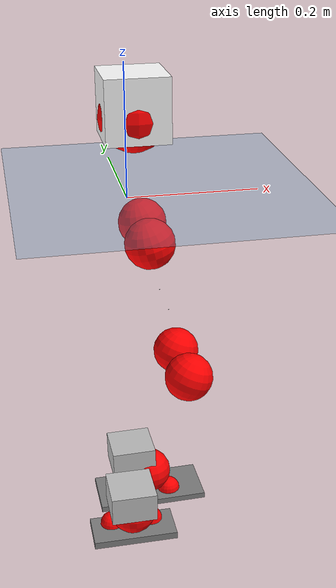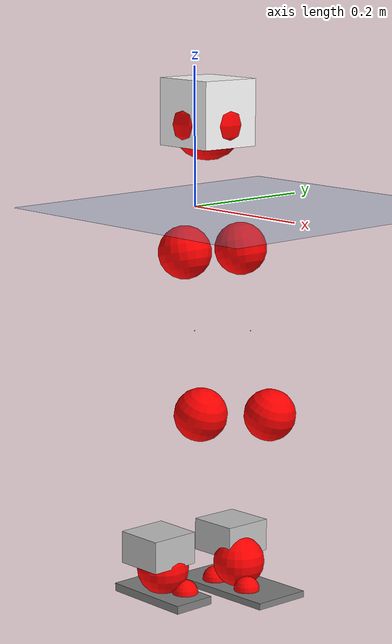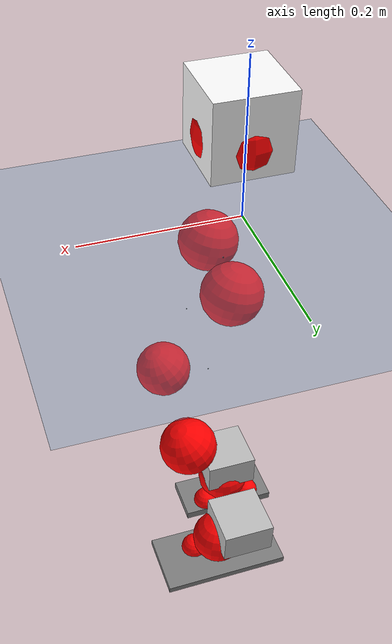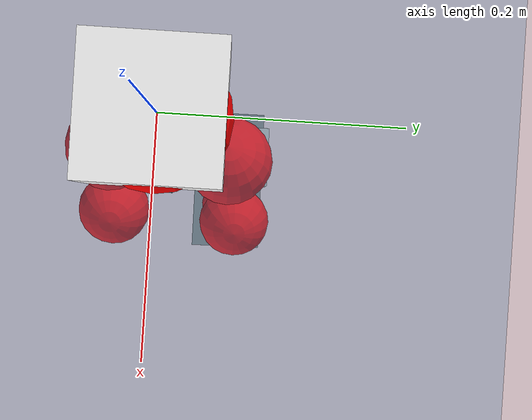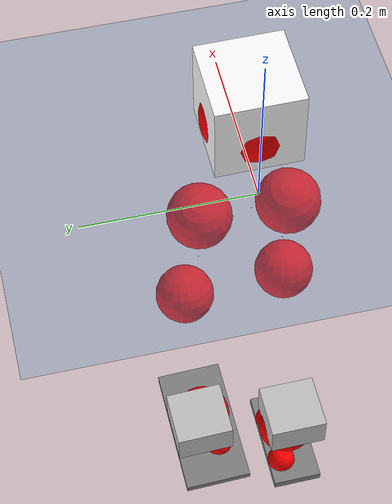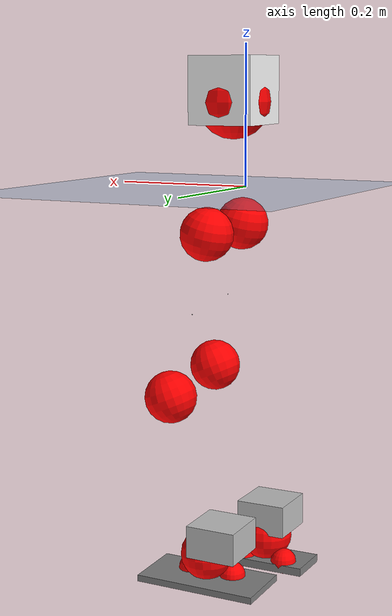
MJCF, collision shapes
<mujoco model="pi_12dof_release_v1">
  <compiler angle="radian" assetdir="assets" balanceinertia="true" inertiafromgeom="false"/>

  <option timestep="0.005" density="1.2" viscosity="2e-05"/>

  <size nkey="1"/>

  <visual>
    <quality shadowsize="8192"/>
    <map shadowclip="0.5"/>
  </visual>

  <default>
    <default class="/">
      <joint armature="0.01" damping="0.01" frictionloss="0.01"/>
      <geom contype="0" conaffinity="0" group="1" solref="-1000 -80"/>
      <site size="0.01 0.005 0.005" group="5"/>
      <general forcelimited="true" biastype="affine" gainprm="20" biasprm="0 -20 -0.5"/>
      <default class="foot">
        <geom size="0.0845 0.036 0.005" type="box" condim="6" group="4" priority="1" friction="0.9 0.2 0.2" solimp="0.015 1 0.005"/>
      </default>
      <default class="reward_collision_sphere">
        <geom group="5" rgba="1 0 0 1"/>
      </default>
    </default>
  </default>

  <asset>
    <texture type="skybox" colorspace="auto" name="//unnamed_texture_0" builtin="gradient" rgb1="0.95 0.95 0.95" rgb2="0.95 0.95 0.95" width="100" height="600"/>
    <texture type="2d" colorspace="auto" name="texplane" builtin="checker" rgb1="0.345 0.575 0.748" rgb2="0.345 0.575 0.748" markrgb="1 1 1" width="512" height="512"/>
    <material name="MatPlane" class="/" texture="texplane" texuniform="true" texrepeat="2 2" specular="0.9"/>
    <mesh name="baselink_1" class="/" file="baselink_1.STL"/>
    <mesh name="r_hip_pitch_link" class="/" file="r_hip_pitch_link.STL"/>
    <mesh name="r_hip_roll_link" class="/" file="r_hip_roll_link.STL"/>
    <mesh name="r_thigh_link" class="/" file="r_thigh_link.STL"/>
    <mesh name="r_calf_link" class="/" file="r_calf_link.STL"/>
    <mesh name="r_ankle_pitch_link" class="/" file="r_ankle_pitch_link.STL"/>
    <mesh name="r_ankle_roll_link" class="/" file="r_ankle_roll_link.STL"/>
    <mesh name="l_hip_pitch_link" class="/" file="l_hip_pitch_link.STL"/>
    <mesh name="l_hip_roll_link" class="/" file="l_hip_roll_link.STL"/>
    <mesh name="l_thigh_link" class="/" file="l_thigh_link.STL"/>
    <mesh name="l_calf_link" class="/" file="l_calf_link.STL"/>
    <mesh name="l_ankle_pitch_link" class="/" file="l_ankle_pitch_link.STL"/>
    <mesh name="l_ankle_roll_link" class="/" file="l_ankle_roll_link.STL"/>
  </asset>

  <worldbody>
    <geom name="floor" class="/" size="100 100 0.125" type="plane" group="0" material="MatPlane"/>
    <light name="toplight_shadow" class="/" pos="0 0 5" dir="0.0990148 0.0990148 -0.990148" type="directional" ambient="0.04 0.04 0.04" diffuse="0.55 0.55 0.55" specular="0.12 0.12 0.12"/>
    <light name="toplight_fill" class="/" pos="0 0 5" dir="0.0990148 0.0990148 -0.990148" type="directional" castshadow="false" ambient="0.04 0.04 0.04" diffuse="0.3 0.3 0.3" specular="0.08 0.08 0.08"/>
    <body name="trunk" pos="0.013903 0.0097096 0.00580116" quat="0.999984 -0.00559515 8.62997e-05 0.000661248">
      <inertial pos="0.015802 0.000907669 0.065973" quat="0.697166 -0.0104028 -0.0105559 0.716757" mass="1.75175" diaginertia="0.000312147 0.00193707 0.039474"/>
      <joint name="//unnamed_joint_0" type="free"/>
      <geom name="//unnamed_geom_1" class="/" type="mesh" density="0" rgba="1 1 1 1" mesh="baselink_1"/>
      <geom name="//unnamed_geom_2" class="/" size="0.0476529 0.0476529 0.0476529" pos="0 0 0.129887" type="box" rgba="1 1 1 1"/>
      <geom name="//unnamed_geom_3" class="reward_collision_sphere" size="0.0524182" pos="0 0 0.113651"/>
      <site name="imu" class="/" pos="-7.90976e-05 -0.0271857 0.0210505" size="0.00953058"/>
      <camera name="track" class="/" pos="0 -1.47646 0" quat="0.707107 0.707107 0 0" mode="trackcom"/>
      <camera name="ego_camera" class="/" pos="0.0373016 0 0.292246" quat="-0.5 -0.5 0.5 0.5"/>
      <body name="r_hip_pitch_link" pos="0.0085193 -0.00832441 -0.0594452" quat="0.99272 -0.00419421 -0.12032 -0.00340118">
        <inertial pos="0.0152851 -0.0333364 0.00721415" quat="-0.0184784 0.705596 -0.0313177 0.707681" mass="0.278137" diaginertia="2.88476e-06 2.12277e-05 0.000716785"/>
        <joint name="r_hip_pitch_joint" class="/" pos="0 0 0" axis="-0.0385122 -0.998826 -0.0293983" stiffness="0.0684233" range="-1.76047 1.15329" armature="0.00996939" damping="0.0253127" frictionloss="0.00481604"/>
        <geom name="//unnamed_geom_4" class="/" type="mesh" density="0" rgba="0.75294 0.75294 0.75294 1" mesh="r_hip_pitch_link"/>
        <geom name="//unnamed_geom_5" class="/" size="0.000476529 0.000476529 0.000476529" type="box" rgba="0.75294 0.75294 0.75294 1"/>
        <body name="r_hip_roll_link" pos="0.0025187 -0.0442395 -0.0055991" quat="1 2.64877e-05 -0.000159347 0.000205923">
          <inertial pos="-0.0147353 -0.00115969 -0.111395" quat="0.707449 -0.0754714 -0.0844783 0.697627" mass="0.356439" diaginertia="1.04469e-05 5.84415e-05 0.00156873"/>
          <joint name="r_hip_roll_joint" class="/" pos="0 0 0" axis="-0.999999 -0.00107946 1.3935e-05" range="0.109818 0.348685" armature="0.0162245" damping="0.0536378" frictionloss="0.00945699"/>
          <geom name="//unnamed_geom_6" class="/" type="mesh" density="0" rgba="0.75294 0.75294 0.75294 1" mesh="r_hip_roll_link"/>
          <geom name="//unnamed_geom_7" class="/" size="0.000476529 0.000476529 0.000476529" type="box" rgba="0.75294 0.75294 0.75294 1"/>
          <geom name="//unnamed_geom_8" class="reward_collision_sphere" size="0.0381223"/>
          <body name="r_thigh_link" pos="-0.00025285 -0.00327752 -0.11124" quat="0.99999 0.00422269 -0.0014428 0.000818803">
            <inertial pos="-0.00828398 -0.00663423 -0.0668439" quat="0.763966 0.643621 0.0405387 0.0215396" mass="0.0925619" diaginertia="4.05001e-06 1.89243e-05 0.000731074"/>
            <joint name="r_thigh_joint" class="/" pos="0 0 0" axis="0.0379909 -0.0393323 -0.998504" stiffness="0.0687864" range="-0.317408 0.413635" armature="0.0157236" damping="0" frictionloss="0.00986557"/>
            <geom name="//unnamed_geom_9" class="/" type="mesh" density="0" rgba="0.75294 0.75294 0.75294 1" mesh="r_thigh_link"/>
            <geom name="//unnamed_geom_10" class="/" size="0.000476529 0.000476529 0.000476529" type="box" rgba="0.75294 0.75294 0.75294 1"/>
            <body name="r_calf_link" pos="0.000443362 -0.0138119 -0.117631" quat="0.946875 0.000927033 0.321593 -0.00217633">
              <inertial pos="-0.0110899 -0.00502091 -0.114472" quat="0.99998 -0.00133371 0.000252307 0.00614906" mass="0.496019" diaginertia="9.70674e-05 0.000703385 0.00192326"/>
              <joint name="r_calf_joint" class="/" pos="0 0 0" axis="-0.00419421 -0.999989 -0.00227721" range="-1.63334 0.891916" armature="0.00163601" damping="0.061" frictionloss="0.00245206"/>
              <geom name="//unnamed_geom_11" class="/" type="mesh" density="0" rgba="0.75294 0.75294 0.75294 1" mesh="r_calf_link"/>
              <geom name="//unnamed_geom_12" class="/" size="0.000476529 0.000476529 0.000476529" type="box" rgba="0.75294 0.75294 0.75294 1"/>
              <geom name="//unnamed_geom_13" class="reward_collision_sphere" size="0.0381223"/>
              <body name="r_ankle_pitch_link" pos="-0.000481311 0.00448787 -0.239777" quat="0.978975 0.000326024 -0.20394 0.0040759">
                <inertial pos="0.0123266 0.0171833 0.00437151" quat="-0.000875909 0.713089 -0.00785854 0.701029" mass="0.193025" diaginertia="1.00879e-05 5.60741e-05 0.00164469"/>
                <joint name="r_ankle_pitch_joint" class="/" pos="0 0 0" axis="0.0717621 -0.997334 -0.0132512" stiffness="0.0676" range="-1.07335 0.28738" armature="0.010399" damping="0.0144564" frictionloss="0.0140368"/>
                <geom name="//unnamed_geom_14" class="/" type="mesh" density="0" rgba="0.75294 0.75294 0.75294 1" mesh="r_ankle_pitch_link"/>
                <geom name="//unnamed_geom_15" class="/" size="0.0371693 0.0381223 0.0238265" type="box" rgba="0.75294 0.75294 0.75294 1"/>
                <body name="r_ankle_roll_link" pos="0.0281897 0.00643181 -0.000518254" quat="1 -5.38435e-05 5.74206e-06 0.000292167">
                  <inertial pos="-0.0193225 0.00060426 -0.0191935" quat="0.565548 0.424502 0.439085 0.554219" mass="0.364811" diaginertia="2.51018e-05 0.000217943 0.00272304"/>
                  <joint name="r_ankle_roll_joint" class="/" pos="0 0 0" axis="-0.996817 0.0205753 0.0770231" range="-0.12781 0.384478" armature="0.00863642" damping="0.043654" frictionloss="0.00969653"/>
                  <geom name="//unnamed_geom_16" class="/" type="mesh" density="0" rgba="0.75294 0.75294 0.75294 1" mesh="r_ankle_roll_link"/>
                  <geom name="//unnamed_geom_17" class="/" type="mesh" rgba="0.75294 0.75294 0.75294 1" mesh="r_ankle_roll_link"/>
                  <geom name="right_foot" class="foot" size="0.0694416 0.0328662 0.00594934" pos="-0.0253651 0 -0.071438"/>
                  <geom name="//unnamed_geom_19" class="reward_collision_sphere" size="0.0381223" pos="-0.0248677 0 -0.0324718"/>
                  <geom name="//unnamed_geom_20" class="reward_collision_sphere" size="0.0190612" pos="0.00746032 0.0147646 -0.0649436"/>
                  <geom name="//unnamed_geom_21" class="reward_collision_sphere" size="0.0190612" pos="-0.0596826 0.0147646 -0.0649436"/>
                  <site name="right_foot" class="foot" pos="-0.0253651 0 -0.071438" size="0.00953058"/>
                </body>
              </body>
            </body>
          </body>
        </body>
      </body>
      <body name="l_hip_pitch_link" pos="0.00275868 0.0145047 -0.0617442" quat="0.991541 -0.00549989 -0.129653 0.00238988">
        <inertial pos="-0.0135072 0.0433811 -0.00201742" quat="-0.0383919 0.706096 0.0296062 0.706455" mass="0.320465" diaginertia="3.89066e-06 1.99846e-05 0.00118525"/>
        <joint name="l_hip_pitch_joint" class="/" pos="0 0 0" axis="-0.00908487 0.999928 0.00778921" stiffness="0.0253723" range="-1.41018 1.75821" armature="0.00446179" damping="0.054722" frictionloss="0.00657681"/>
        <geom name="//unnamed_geom_22" class="/" type="mesh" density="0" rgba="0.75294 0.75294 0.75294 1" mesh="l_hip_pitch_link"/>
        <geom name="//unnamed_geom_23" class="/" size="0.000476529 0.000476529 0.000476529" type="box" rgba="0.75294 0.75294 0.75294 1"/>
        <body name="l_hip_roll_link" pos="0.0132923 0.0356725 -0.0101749" quat="0.999977 0.00218308 0.00176649 0.00611367">
          <inertial pos="0.00051021 0.00320153 -0.0959491" quat="0.674737 -0.113736 -0.0428562 0.727982" mass="0.385543" diaginertia="9.58766e-06 6.91452e-05 0.00135886"/>
          <joint name="l_hip_roll_joint" class="/" pos="0 0 0" axis="-0.999419 0.0191656 -0.028199" range="-0.408581 0.230997" armature="0.00467186" damping="0.0790487" frictionloss="0.0061249"/>
          <geom name="//unnamed_geom_24" class="/" type="mesh" density="0" rgba="0.75294 0.75294 0.75294 1" mesh="l_hip_roll_link"/>
          <geom name="//unnamed_geom_25" class="/" size="0.000476529 0.000476529 0.000476529" type="box" rgba="0.75294 0.75294 0.75294 1"/>
          <geom name="//unnamed_geom_26" class="reward_collision_sphere" size="0.0381223"/>
          <body name="l_thigh_link" pos="-0.00487766 -0.00244096 -0.119521" quat="1 -0.00017368 -0.000137464 -0.000189601">
            <inertial pos="0.00115563 -0.00128833 -0.0853228" quat="0.676029 0.736856 -0.00427805 0.00322078" mass="0.0981348" diaginertia="3.79455e-06 2.09003e-05 0.000665303"/>
            <joint name="l_thigh_joint" class="/" pos="0 0 0" axis="0.00972408 0.0147501 -0.999844" stiffness="0.000759514" range="-0.584144 0.331909" armature="0.0136177" damping="0" frictionloss="0.0105412"/>
            <geom name="//unnamed_geom_27" class="/" type="mesh" density="0" rgba="0.75294 0.75294 0.75294 1" mesh="l_thigh_link"/>
            <geom name="//unnamed_geom_28" class="/" size="0.000476529 0.000476529 0.000476529" type="box" rgba="0.75294 0.75294 0.75294 1"/>
            <body name="l_calf_link" pos="-0.00233072 0.0136364 -0.125084" quat="0.948815 -0.00327727 0.315815 -0.000463477">
              <inertial pos="0.00028142 -0.00818231 -0.115716" quat="0.997567 0.0199704 0.00226432 0.0667531" mass="0.707991" diaginertia="9.59152e-05 0.000680576 0.0021081"/>
              <joint name="l_calf_joint" class="/" pos="0 0 0" axis="0.00747402 0.999971 0.00150842" stiffness="0.0155661" range="-0.593331 1.61087" armature="0.0164636" damping="0.00905806" frictionloss="0.00280998"/>
              <geom name="//unnamed_geom_29" class="/" type="mesh" density="0" rgba="0.75294 0.75294 0.75294 1" mesh="l_calf_link"/>
              <geom name="//unnamed_geom_30" class="/" size="0.000476529 0.000476529 0.000476529" type="box" rgba="0.75294 0.75294 0.75294 1"/>
              <geom name="//unnamed_geom_31" class="reward_collision_sphere" size="0.0381223"/>
              <body name="l_ankle_pitch_link" pos="-0.00016931 0.00647719 -0.215917" quat="0.980041 0.00178957 -0.198767 -0.00275216">
                <inertial pos="0.00176937 0.00651117 -0.000483593" quat="-0.00412288 0.704375 0.000525514 0.709816" mass="0.177052" diaginertia="1.078e-05 5.14659e-05 0.00167792"/>
                <joint name="l_ankle_pitch_joint" class="/" pos="0 0 0" axis="-0.0129439 0.999914 -0.00221193" stiffness="0.00562944" range="-0.457819 1.29683" armature="0.00968979" damping="0" frictionloss="0.00655016"/>
                <geom name="//unnamed_geom_32" class="/" type="mesh" density="0" rgba="0.75294 0.75294 0.75294 1" mesh="l_ankle_pitch_link"/>
                <geom name="//unnamed_geom_33" class="/" size="0.0371693 0.0381223 0.0238265" type="box" rgba="0.75294 0.75294 0.75294 1"/>
                <body name="l_ankle_roll_link" pos="0.0534212 -0.0102547 -0.000698452" quat="0.999999 -5.11072e-05 0.00135103 0.00039266">
                  <inertial pos="-0.027102 -0.00269083 -0.0313101" quat="0.563222 0.434585 0.408634 0.571783" mass="0.431197" diaginertia="3.66252e-05 0.000299965 0.00332962"/>
                  <joint name="l_ankle_roll_joint" class="/" pos="0 0 0" axis="-0.998469 0.00125897 0.0553084" stiffness="0.0412229" range="-0.0713938 0.166045" armature="0.00909282" damping="0" frictionloss="0.00766943"/>
                  <geom name="//unnamed_geom_34" class="/" type="mesh" density="0" rgba="0.75294 0.75294 0.75294 1" mesh="l_ankle_roll_link"/>
                  <geom name="//unnamed_geom_35" class="/" type="mesh" rgba="0.75294 0.75294 0.75294 1" mesh="l_ankle_roll_link"/>
                  <geom name="left_foot" class="foot" size="0.0916946 0.0453415 0.00480223" pos="-0.0253651 0 -0.071438"/>
                  <geom name="//unnamed_geom_37" class="reward_collision_sphere" size="0.0381223" pos="-0.0248677 0 -0.0324718"/>
                  <geom name="//unnamed_geom_38" class="reward_collision_sphere" size="0.0190612" pos="0.00746032 -0.0147646 -0.0649436"/>
                  <geom name="//unnamed_geom_39" class="reward_collision_sphere" size="0.0190612" pos="-0.0596826 -0.0147646 -0.0649436"/>
                  <site name="left_foot" class="foot" pos="-0.0253651 0 -0.071438" size="0.00953058"/>
                </body>
              </body>
            </body>
          </body>
        </body>
      </body>
    </body>
  </worldbody>

  <contact>
    <pair class="/" geom1="floor" geom2="right_foot" name="//unnamed_contact_1"/>
    <pair class="/" geom1="floor" geom2="left_foot" name="//unnamed_contact_0"/>
  </contact>

  <actuator>
    <general name="r_hip_pitch_joint" class="/" joint="r_hip_pitch_joint" forcerange="-22.5746 22.5746" gainprm="17.959" biasprm="0 -17.959 -0.574278"/>
    <general name="r_hip_roll_joint" class="/" joint="r_hip_roll_joint" forcerange="-19.3285 19.3285" gainprm="17.959" biasprm="0 -17.959 -0.574278"/>
    <general name="r_thigh_joint" class="/" joint="r_thigh_joint" forcerange="-19.4268 19.4268" gainprm="17.959" biasprm="0 -17.959 -0.574278"/>
    <general name="r_calf_joint" class="/" joint="r_calf_joint" forcerange="-22.0601 22.0601" gainprm="17.959" biasprm="0 -17.959 -0.574278"/>
    <general name="r_ankle_pitch_joint" class="/" joint="r_ankle_pitch_joint" forcerange="-17.6776 17.6776" gainprm="17.959" biasprm="0 -17.959 -0.574278"/>
    <general name="r_ankle_roll_joint" class="/" joint="r_ankle_roll_joint" forcerange="-22.148 22.148" gainprm="17.959" biasprm="0 -17.959 -0.574278"/>
    <general name="l_hip_pitch_joint" class="/" joint="l_hip_pitch_joint" forcerange="-20.6141 20.6141" gainprm="17.959" biasprm="0 -17.959 -0.574278"/>
    <general name="l_hip_roll_joint" class="/" joint="l_hip_roll_joint" forcerange="-25.6214 25.6214" gainprm="17.959" biasprm="0 -17.959 -0.574278"/>
    <general name="l_thigh_joint" class="/" joint="l_thigh_joint" forcerange="-20.3831 20.3831" gainprm="17.959" biasprm="0 -17.959 -0.574278"/>
    <general name="l_calf_joint" class="/" joint="l_calf_joint" forcerange="-8.80492 8.80492" gainprm="17.959" biasprm="0 -17.959 -0.574278"/>
    <general name="l_ankle_pitch_joint" class="/" joint="l_ankle_pitch_joint" forcerange="-19.2229 19.2229" gainprm="17.959" biasprm="0 -17.959 -0.574278"/>
    <general name="l_ankle_roll_joint" class="/" joint="l_ankle_roll_joint" forcerange="-27.7674 27.7674" gainprm="17.959" biasprm="0 -17.959 -0.574278"/>
  </actuator>

  <sensor>
    <gyro site="imu" name="imu_angular_velocity"/>
    <velocimeter site="imu" name="imu_linear_velocity"/>
    <framelinvel objtype="site" objname="left_foot" name="left_foot_global_linear_velocity"/>
    <framelinvel objtype="site" objname="right_foot" name="right_foot_global_linear_velocity"/>
  </sensor>

  <keyframe>
    <key name="home" qpos="0 0 0.291 1 0 0 0 0.4 0 0 -0.8 0.4 0 -0.4 0 0 0.8 -0.4 0"/>
  </keyframe>
</mujoco>
